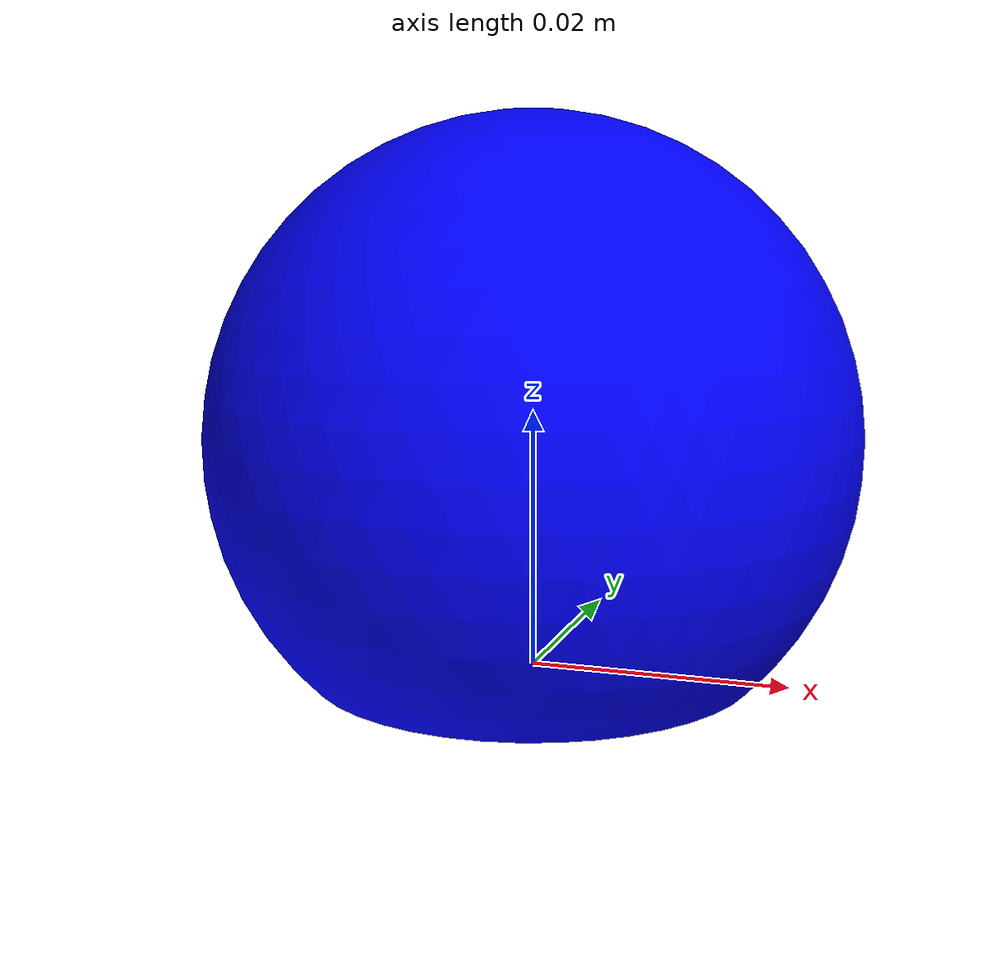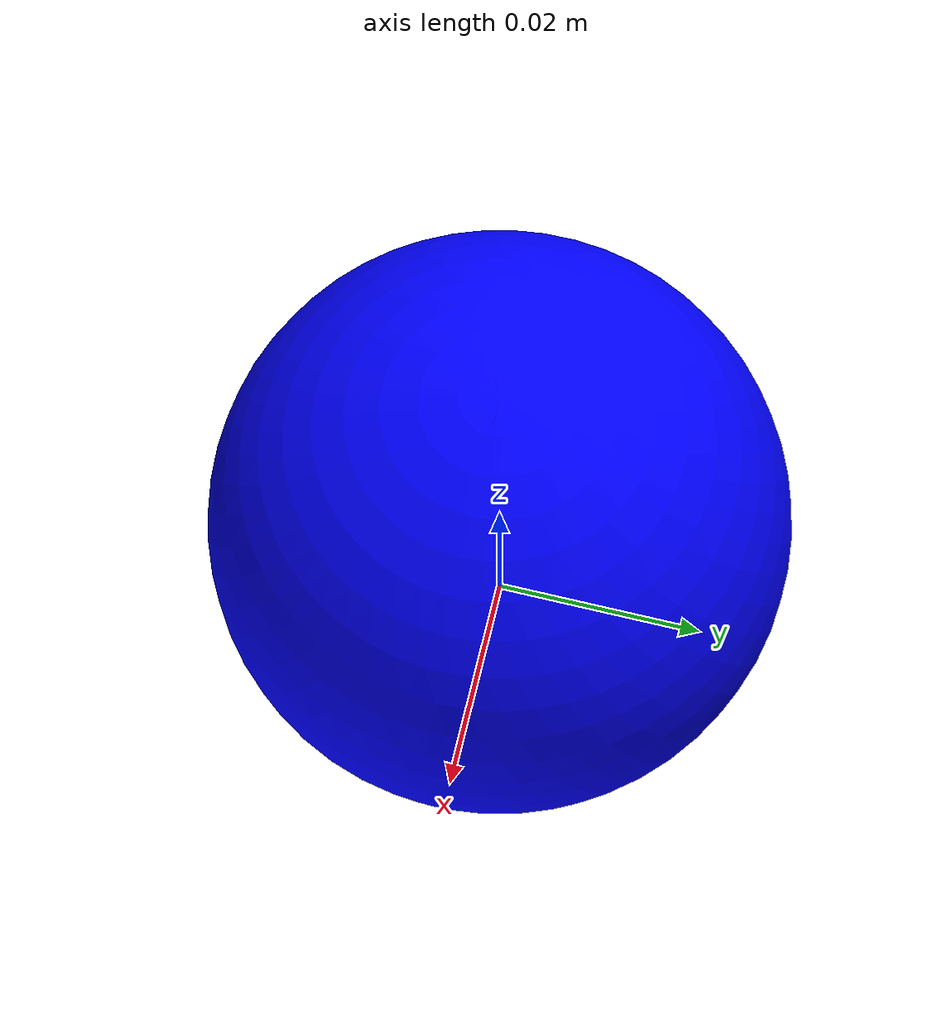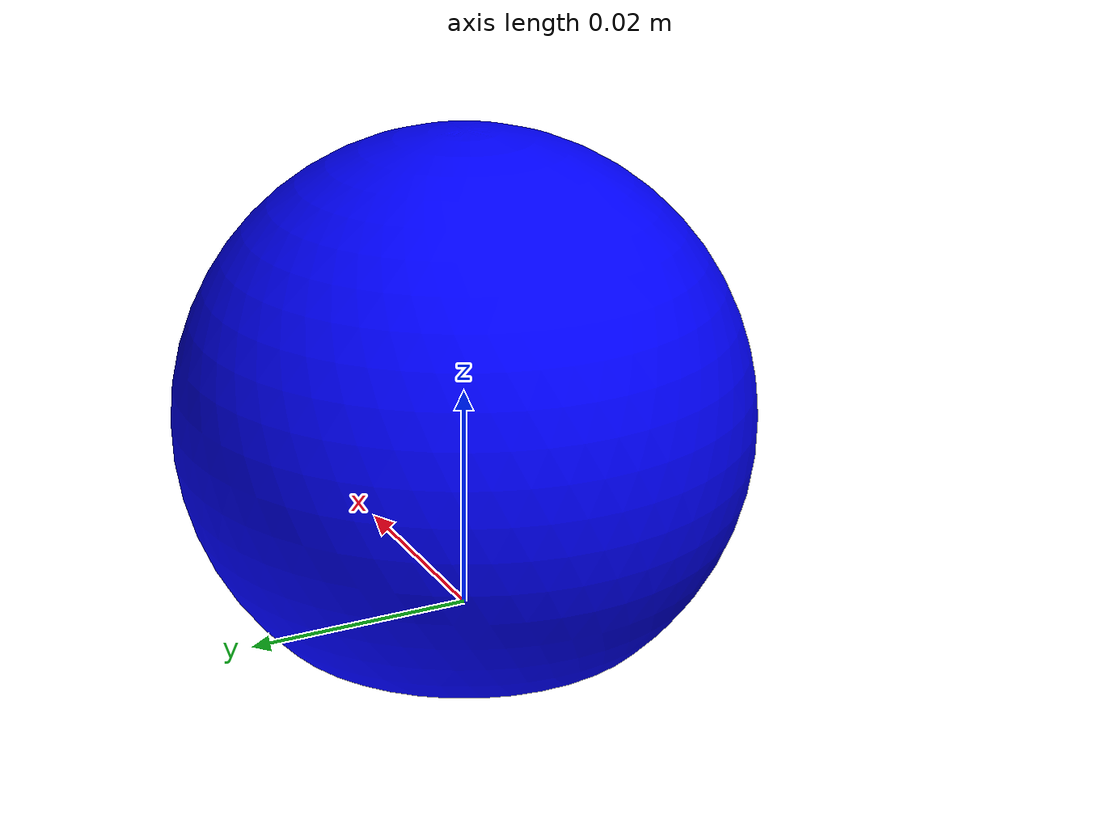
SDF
<?xml version="1.0"?>
<sdf version="1.6">
  <model name="sphere_blue">
      <static>false</static>
      <link name="body">

        <inertial>
          <mass>0.06</mass>
          <inertia>
            <ixx>0.001</ixx>
            <iyy>0.001</iyy>
            <izz>0.001</izz>
          </inertia>
      </inertial>

        <visual name="vis">
          <geometry>
            <mesh>
         	<uri>model://sphere_blue/sphere.dae</uri>
          </mesh>
          </geometry>
        </visual>

        <collision name="col">
	  <pose>0.0 0.0 0.025 0 0 0</pose>
          <geometry>
	    <box>
	      <size>0.05 0.05 0.05</size>
	    </box>
          </geometry>
	  <surface>
            <friction>
              <ode>
                <mu>0.1</mu>
                <mu2>0.1</mu2>
                <slip1>0.9</slip1>
                <slip2>0.9</slip2>
              </ode>
            </friction>
          </surface>
        </collision>
      </link>
  </model>
</sdf>
